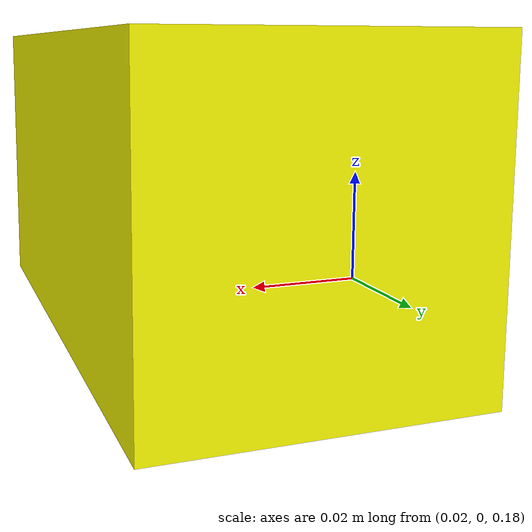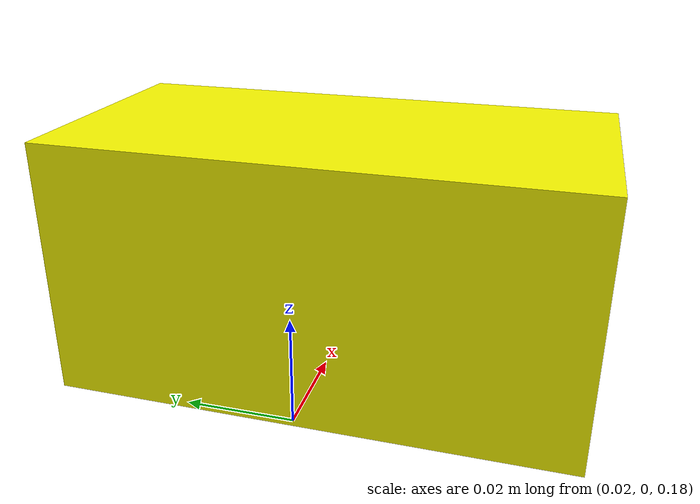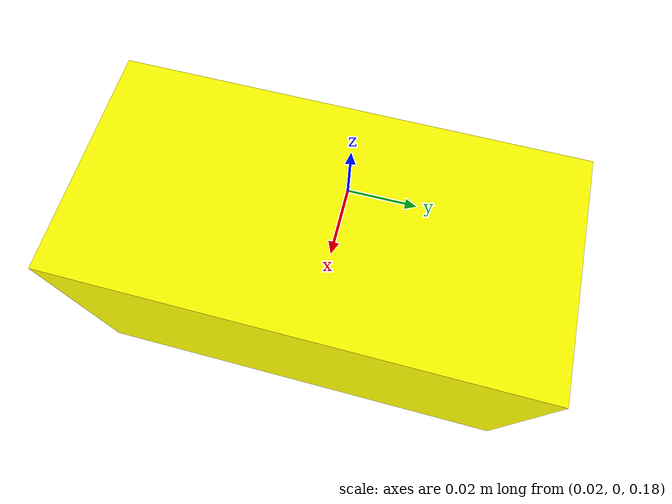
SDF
<!-- DO NOT EDIT: Generated from depth_camera.sdf.jinja -->
<?xml version="1.0" ?>
<sdf version="1.5">
  <model name="dropla_stereo_camera">
    <link name="link">
      <pose>0.05 0.0 0.2 0 0 1.57</pose>

      <visual name="camera_body_visual">
        <geometry>
          <box>
            <size>0.1 0.05 0.05</size>
          </box>
        </geometry>
        <material>
          <ambient>1 1 0 1</ambient>
          <diffuse>1 1 0 1</diffuse>
          <specular>0.5 0.5 0.1 1</specular>
        </material>
      </visual>
      <inertial>
        <pose>0 0 0 0 0 0</pose>
        <mass>0.1</mass>
        <inertia>
          <ixx>4.17e-5</ixx>
          <ixy>0</ixy>
          <ixz>0</ixz>
          <iyy>1.04e-4</iyy>
          <iyz>0</iyz>
          <izz>1.04e-4</izz>
        </inertia>
      </inertial>

      <!-- Left camera -->
      <sensor name="left_camera" type="camera">
        <pose>-0.03 0 0 0 0 -1.57</pose> <!-- 6 cm baseline: -3cm -->
        <update_rate>30</update_rate>
        <camera>
          <horizontal_fov>1.3962634</horizontal_fov> <!-- ~80 degrees -->
          <image>
            <width>640</width>
            <height>480</height>
            <format>R8G8B8</format>
          </image>
          <clip>
            <near>0.1</near>
            <far>100</far>
          </clip>
        </camera>
        <visualize>true</visualize> <!-- Enables visualization of the camera's FoV -->
        <plugin name="left_camera_controller" filename="libgazebo_ros_camera.so">
          <ros>
            <namespace>/drone1</namespace>
          </ros>
          <alwaysOn>true</alwaysOn>
          <updateRate>30</updateRate>
          <cameraName>left_camera</cameraName>
          <imageTopicName>left/image_raw</imageTopicName>
          <cameraInfoTopicName>left/camera_info</cameraInfoTopicName>
          <frameName>left_camera_frame</frameName>
        </plugin>
      </sensor>

      <!-- Right camera -->
      <sensor name="right_camera" type="camera">
        <pose>0.03 0 0 0 0 -1.57</pose> <!-- +3cm -->
        <update_rate>30</update_rate>
        <camera>
          <horizontal_fov>1.3962634</horizontal_fov>
          <image>
            <width>640</width>
            <height>480</height>
            <format>R8G8B8</format>
          </image>
          <clip>
            <near>0.1</near>
            <far>100</far>
          </clip>
        </camera>
        <visualize>true</visualize> <!-- Enables visualization of the camera's FoV -->
        <plugin name="right_camera_controller" filename="libgazebo_ros_camera.so">
          <ros>
            <namespace>/drone1</namespace>
          </ros>
          <alwaysOn>true</alwaysOn>
          <updateRate>30</updateRate>
          <cameraName>right_camera</cameraName>
          <imageTopicName>right/image_raw</imageTopicName>
          <cameraInfoTopicName>right/camera_info</cameraInfoTopicName>
          <frameName>right_camera_frame</frameName>
        </plugin>
      </sensor>

    </link>
  </model>
</sdf>
